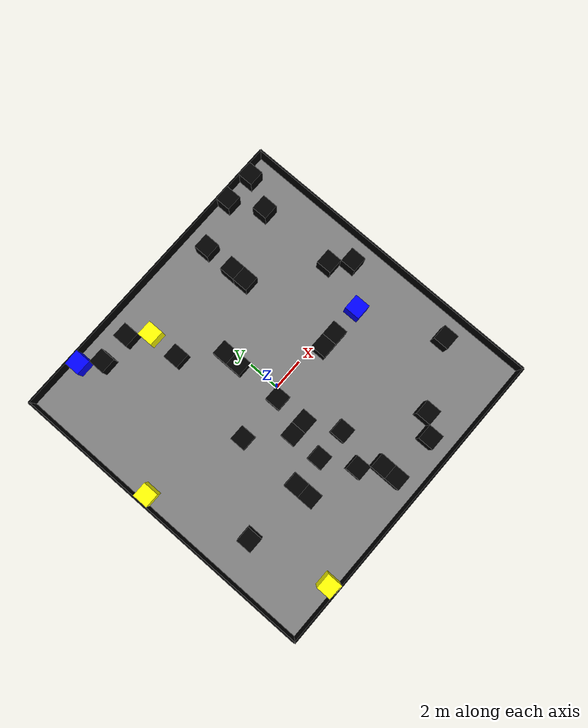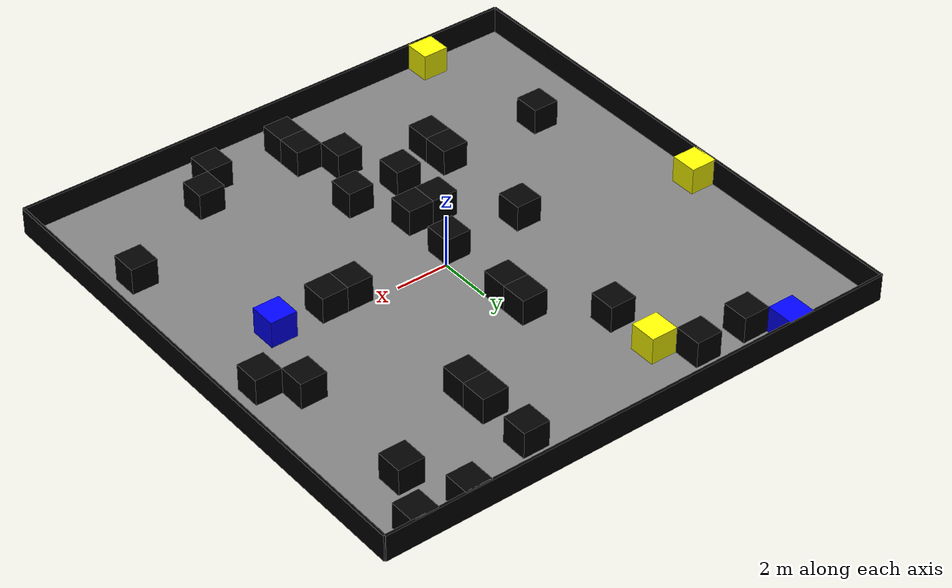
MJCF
<mujoco model="simple_navigation">
  <compiler angle="degree" coordinate="local" inertiafromgeom="true"/>
  <option integrator="RK4" timestep="0.01"/>

  <asset>
    <texture builtin="gradient" height="100" rgb1="0.6 0.8 1" rgb2="0.1 0.1 0.1" type="skybox" width="100"/>
    <texture name="floor_texture" type="2d" builtin="checker" width="100" height="100" rgb1="0.5 0.5 0.5" rgb2="0.5 0.5 0.5"/>
    <material name="MatPlane" reflectance="0.5" shininess="1" specular="1" texrepeat="10 10" texture="floor_texture"/>
  </asset>

  <contact>
    <exclude body1="agent_1" body2="floor"/>
    <exclude body1="agent_2" body2="floor"/>
  </contact>

  <extension>
    <plugin plugin="mujoco.pid">
      <instance name="pid1">
        <config key="kp" value="2"/>
        <config key="ki" value="0"/>
        <config key="kd" value="55"/>
      </instance>
    </plugin>
  </extension>

  <worldbody>
    <light cutoff="100" diffuse="0.9 0.9 0.9" dir="-0 0 -1.3" directional="true" exponent="1" pos="0 0 1.3" specular=".1 .1 .1"/>
    <body name="floor" pos="0 0 0">
      <geom name="floor_geom" type="plane" size="10 10 0.1" material="MatPlane"/>
    </body>
    <body name="agent_1" pos="6.500000 -0.500000 0.500000">
        <joint name="agent_1_j1" type="slide" axis="1 0 0"/>
        <joint name="agent_1_j2" type="slide" axis="0 1 0"/>
        <geom name="agent_geom_1_geom" type="box" size="0.5 0.5 0.5" rgba="0 0 1 1"/>
    </body>
    <body name="agent_2" pos="-6.500000 9.500000 0.500000">
        <joint name="agent_2_j1" type="slide" axis="1 0 0"/>
        <joint name="agent_2_j2" type="slide" axis="0 1 0"/>
        <geom name="agent_geom_2_geom" type="box" size="0.5 0.5 0.5" rgba="0 0 1 1"/>
    </body>
    <body name="target_1" pos="-6.500000 -9.500000 0.500000">
        <geom name="target_geom_1" type="box" size="0.500000 0.500000 0.500000" rgba="1 1 0 1"/>
    </body>
    <body name="target_2" pos="-9.500000 1.500000 0.500000">
        <geom name="target_geom_2" type="box" size="0.500000 0.500000 0.500000" rgba="1 1 0 1"/>
    </body>
    <body name="target_3" pos="-2.500000 7.500000 0.500000">
        <geom name="target_geom_3" type="box" size="0.500000 0.500000 0.500000" rgba="1 1 0 1"/>
    </body>
    <body name="obstacle_1" pos="0.500000 -8.500000 0.500000">
        <geom name="obstacle_geom_1" type="box" size="0.500000 0.500000 0.500000" rgba="0 0 0 1"/>
    </body>
    <body name="obstacle_2" pos="3.500000 -0.500000 0.500000">
        <geom name="obstacle_geom_2" type="box" size="0.500000 0.500000 0.500000" rgba="0 0 0 1"/>
    </body>
    <body name="obstacle_3" pos="3.500000 6.500000 0.500000">
        <geom name="obstacle_geom_3" type="box" size="0.500000 0.500000 0.500000" rgba="0 0 0 1"/>
    </body>
    <body name="obstacle_4" pos="-1.500000 -4.500000 0.500000">
        <geom name="obstacle_geom_4" type="box" size="0.500000 0.500000 0.500000" rgba="0 0 0 1"/>
    </body>
    <body name="obstacle_5" pos="-1.500000 -2.500000 0.500000">
        <geom name="obstacle_geom_5" type="box" size="0.500000 0.500000 0.500000" rgba="0 0 0 1"/>
    </body>
    <body name="obstacle_6" pos="-3.500000 -4.500000 0.500000">
        <geom name="obstacle_geom_6" type="box" size="0.500000 0.500000 0.500000" rgba="0 0 0 1"/>
    </body>
    <body name="obstacle_7" pos="-0.500000 3.500000 0.500000">
        <geom name="obstacle_geom_7" type="box" size="0.500000 0.500000 0.500000" rgba="0 0 0 1"/>
    </body>
    <body name="obstacle_8" pos="0.500000 -7.500000 0.500000">
        <geom name="obstacle_geom_8" type="box" size="0.500000 0.500000 0.500000" rgba="0 0 0 1"/>
    </body>
    <body name="obstacle_9" pos="3.500000 5.500000 0.500000">
        <geom name="obstacle_geom_9" type="box" size="0.500000 0.500000 0.500000" rgba="0 0 0 1"/>
    </body>
    <body name="obstacle_10" pos="8.500000 1.500000 0.500000">
        <geom name="obstacle_geom_10" type="box" size="0.500000 0.500000 0.500000" rgba="0 0 0 1"/>
    </body>
    <body name="obstacle_11" pos="8.500000 9.500000 0.500000">
        <geom name="obstacle_geom_11" type="box" size="0.500000 0.500000 0.500000" rgba="0 0 0 1"/>
    </body>
    <body name="obstacle_12" pos="6.500000 9.500000 0.500000">
        <geom name="obstacle_geom_12" type="box" size="0.500000 0.500000 0.500000" rgba="0 0 0 1"/>
    </body>
    <body name="obstacle_13" pos="4.500000 -0.500000 0.500000">
        <geom name="obstacle_geom_13" type="box" size="0.500000 0.500000 0.500000" rgba="0 0 0 1"/>
    </body>
    <body name="obstacle_14" pos="-0.500000 -0.500000 0.500000">
        <geom name="obstacle_geom_14" type="box" size="0.500000 0.500000 0.500000" rgba="0 0 0 1"/>
    </body>
    <body name="obstacle_15" pos="-0.500000 -2.500000 0.500000">
        <geom name="obstacle_geom_15" type="box" size="0.500000 0.500000 0.500000" rgba="0 0 0 1"/>
    </body>
    <body name="obstacle_16" pos="-3.500000 -0.500000 0.500000">
        <geom name="obstacle_geom_16" type="box" size="0.500000 0.500000 0.500000" rgba="0 0 0 1"/>
    </body>
    <body name="obstacle_17" pos="-7.500000 -4.500000 0.500000">
        <geom name="obstacle_geom_17" type="box" size="0.500000 0.500000 0.500000" rgba="0 0 0 1"/>
    </body>
    <body name="obstacle_18" pos="8.500000 -5.500000 0.500000">
        <geom name="obstacle_geom_18" type="box" size="0.500000 0.500000 0.500000" rgba="0 0 0 1"/>
    </body>
    <body name="obstacle_19" pos="7.500000 7.500000 0.500000">
        <geom name="obstacle_geom_19" type="box" size="0.500000 0.500000 0.500000" rgba="0 0 0 1"/>
    </body>
    <body name="obstacle_20" pos="-2.500000 5.500000 0.500000">
        <geom name="obstacle_geom_20" type="box" size="0.500000 0.500000 0.500000" rgba="0 0 0 1"/>
    </body>
    <body name="obstacle_21" pos="-5.500000 8.500000 0.500000">
        <geom name="obstacle_geom_21" type="box" size="0.500000 0.500000 0.500000" rgba="0 0 0 1"/>
    </body>
    <body name="obstacle_22" pos="7.500000 2.500000 0.500000">
        <geom name="obstacle_geom_22" type="box" size="0.500000 0.500000 0.500000" rgba="0 0 0 1"/>
    </body>
    <body name="obstacle_23" pos="-3.500000 8.500000 0.500000">
        <geom name="obstacle_geom_23" type="box" size="0.500000 0.500000 0.500000" rgba="0 0 0 1"/>
    </body>
    <body name="obstacle_24" pos="3.500000 8.500000 0.500000">
        <geom name="obstacle_geom_24" type="box" size="0.500000 0.500000 0.500000" rgba="0 0 0 1"/>
    </body>
    <body name="obstacle_25" pos="-0.500000 2.500000 0.500000">
        <geom name="obstacle_geom_25" type="box" size="0.500000 0.500000 0.500000" rgba="0 0 0 1"/>
    </body>
    <body name="obstacle_26" pos="0.500000 -4.500000 0.500000">
        <geom name="obstacle_geom_26" type="box" size="0.500000 0.500000 0.500000" rgba="0 0 0 1"/>
    </body>
    <body name="obstacle_27" pos="-3.500000 -5.500000 0.500000">
        <geom name="obstacle_geom_27" type="box" size="0.500000 0.500000 0.500000" rgba="0 0 0 1"/>
    </body>
    <body name="obstacle_28" pos="4.500000 -7.500000 0.500000">
        <geom name="obstacle_geom_28" type="box" size="0.500000 0.500000 0.500000" rgba="0 0 0 1"/>
    </body>
    <body name="obstacle_29" pos="3.500000 -8.500000 0.500000">
        <geom name="obstacle_geom_29" type="box" size="0.500000 0.500000 0.500000" rgba="0 0 0 1"/>
    </body>
    <body name="obstacle_30" pos="-0.500000 -6.500000 0.500000">
        <geom name="obstacle_geom_30" type="box" size="0.500000 0.500000 0.500000" rgba="0 0 0 1"/>
    </body>
    <geom name="wall_west"  type="box" pos="-10  0  0.5" size="0.05 10   0.5" rgba="0 0 0 1" contype="1" conaffinity="1"/>
    <geom name="wall_east"  type="box" pos=" 10  0  0.5" size="0.05 10   0.5" rgba="0 0 0 1" contype="1" conaffinity="1"/>
    <geom name="wall_south" type="box" pos="  0 -10 0.5" size="10   0.05 0.5" rgba="0 0 0 1" contype="1" conaffinity="1"/>
    <geom name="wall_north" type="box" pos="  0  10 0.5" size="10   0.05 0.5" rgba="0 0 0 1" contype="1" conaffinity="1"/>
  </worldbody>

  <actuator>
    <plugin joint="agent_1_j1" plugin="mujoco.pid" instance="pid1"/>
    <plugin joint="agent_1_j2" plugin="mujoco.pid" instance="pid1"/>
    <plugin joint="agent_2_j1" plugin="mujoco.pid" instance="pid1"/>
    <plugin joint="agent_2_j2" plugin="mujoco.pid" instance="pid1"/>
  </actuator>
</mujoco>
